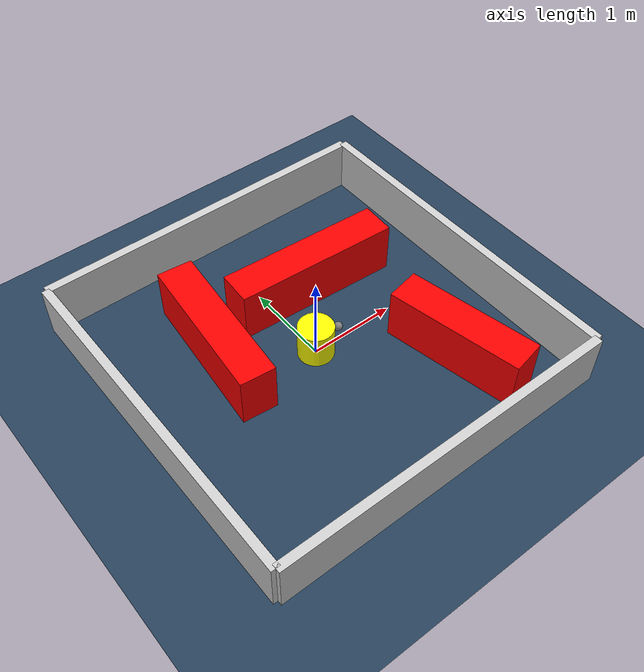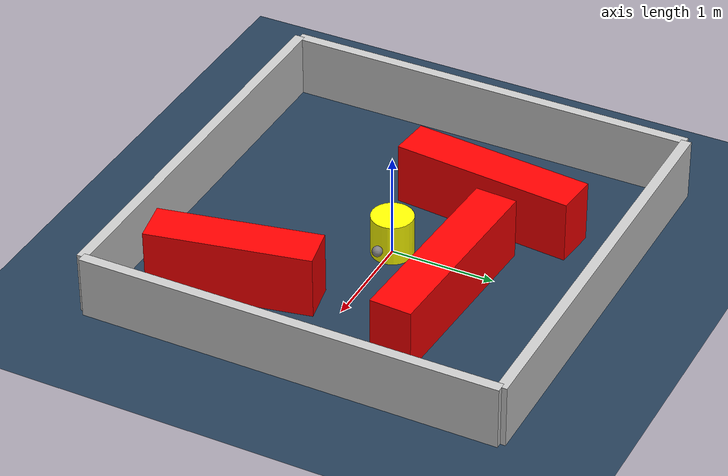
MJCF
<?xml version="1.0" ?>
<mujoco model="generated_environment">
  <option timestep="0.01" integrator="RK4" cone="elliptic"/>
  <default>
    <geom density="1"/>
  </default>
  <asset>
    <texture builtin="gradient" height="3072" rgb1="0.3 0.5 0.7" rgb2="0 0 0" type="skybox" width="512"/>
    <texture builtin="checker" height="300" mark="edge" markrgb="0.8 0.8 0.8" name="groundplane" rgb1="0.2 0.3 0.4" rgb2="0.1 0.2 0.3" type="2d" width="300"/>
    <material name="groundplane" reflectance="0.2" texrepeat="5 5" texture="groundplane" texuniform="true"/>
    <material name="robot" rgba="0.0 1.0 0.0 1"/>
  </asset>
  <worldbody>
    <light dir="0 0 -1" directional="true" pos="0 0 1.5"/>
    <geom condim="4" friction="1.0 0.005 0.001" material="groundplane" name="floor" size="0 0 0.05" type="plane"/>
    <body name="walls">
      <geom name="wall_1" condim="4" pos="-2.0 0.0 0.3" rgba="0.800000011920929 0.800000011920929 0.800000011920929 1.0" size="0.05 2.0 0.3" type="box"/>
      <geom name="wall_2" condim="4" pos="2.0 0.0 0.3" rgba="0.800000011920929 0.800000011920929 0.800000011920929 1.0" size="0.05 2.0 0.3" type="box"/>
      <geom name="wall_3" condim="4" pos="0.0 -2.0 0.3" rgba="0.800000011920929 0.800000011920929 0.800000011920929 1.0" size="2.0 0.05 0.3" type="box"/>
      <geom name="wall_4" condim="4" pos="0.0 2.0 0.3" rgba="0.800000011920929 0.800000011920929 0.800000011920929 1.0" size="2.0 0.05 0.3" type="box"/>
    </body>
    <body name="robot">
      <joint name="joint_x" type="slide" pos="0 0 0" axis="1 0 0"/>
      <joint name="joint_y" type="slide" pos="0 0 0" axis="0 1 0"/>
      <geom name="robot" type="sphere" pos="0.3 0.0 0.2" size="0.05" mass="5." friction="1.0 0.005 0.0001" condim="4" rgba="0.5 0.5 0.5 1.0"/>
      <site name="sensor_ball"/>
    </body>
    <body name="obstacle_movable_1">
      <geom name="obstacle_movable_1" condim="4" pos="0.0 0.0 0.2" euler="0 0 0.0" friction="1.0 0.005 0.001" rgba="1.0 1.0 0.0 1.0" size="0.2 0.2 0.0" type="cylinder" mass="0.1"/>
      <joint type="free"/>
    </body>
    <body name="obstacle_2_static">
      <geom name="obstacle_2_static" condim="4" pos="-0.8551043738653424 0.5781554270224618 0.3" euler="0 0 264.5619939650083" friction="1.0 0.005 0.001" rgba="1 0 0 1" size="0.8778951967936788 0.2 0.3" type="box"/>
    </body>
    <body name="obstacle_3_static">
      <geom name="obstacle_3_static" condim="4" pos="0.4975505350938587 0.7564695334987916 0.3" euler="0 0 356.83711599445746" friction="1.0 0.005 0.001" rgba="1 0 0 1" size="0.9509419348391575 0.2 0.3" type="box"/>
    </body>
    <body name="obstacle_4_static">
      <geom name="obstacle_4_static" condim="4" pos="1.12547201391321 -0.9865360335502692 0.3" euler="0 0 101.46792304349782" friction="1.0 0.005 0.001" rgba="1 0 0 1" size="0.7730635312724128 0.2 0.3" type="box"/>
    </body>
  </worldbody>
  <actuator>
    <motor name="actuator_x" joint="joint_x" gear="1" ctrlrange="-1 1"/>
    <motor name="actuator_y" joint="joint_y" gear="1" ctrlrange="-1 1"/>
  </actuator>
</mujoco>
